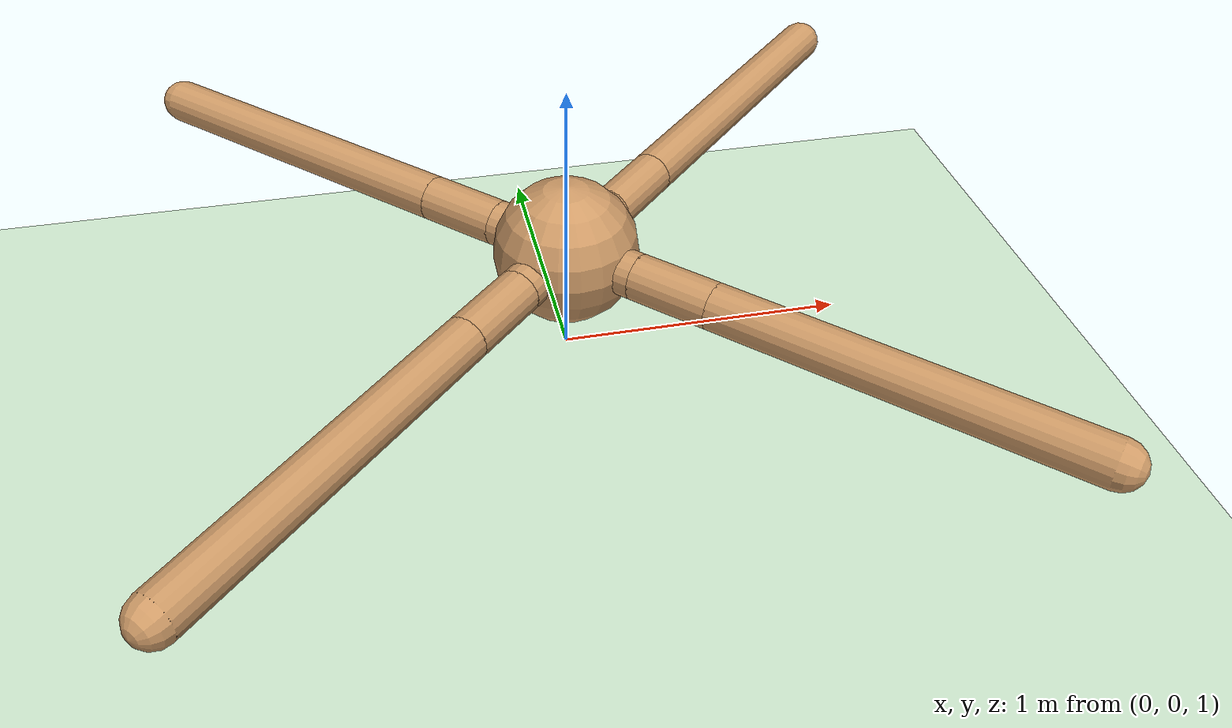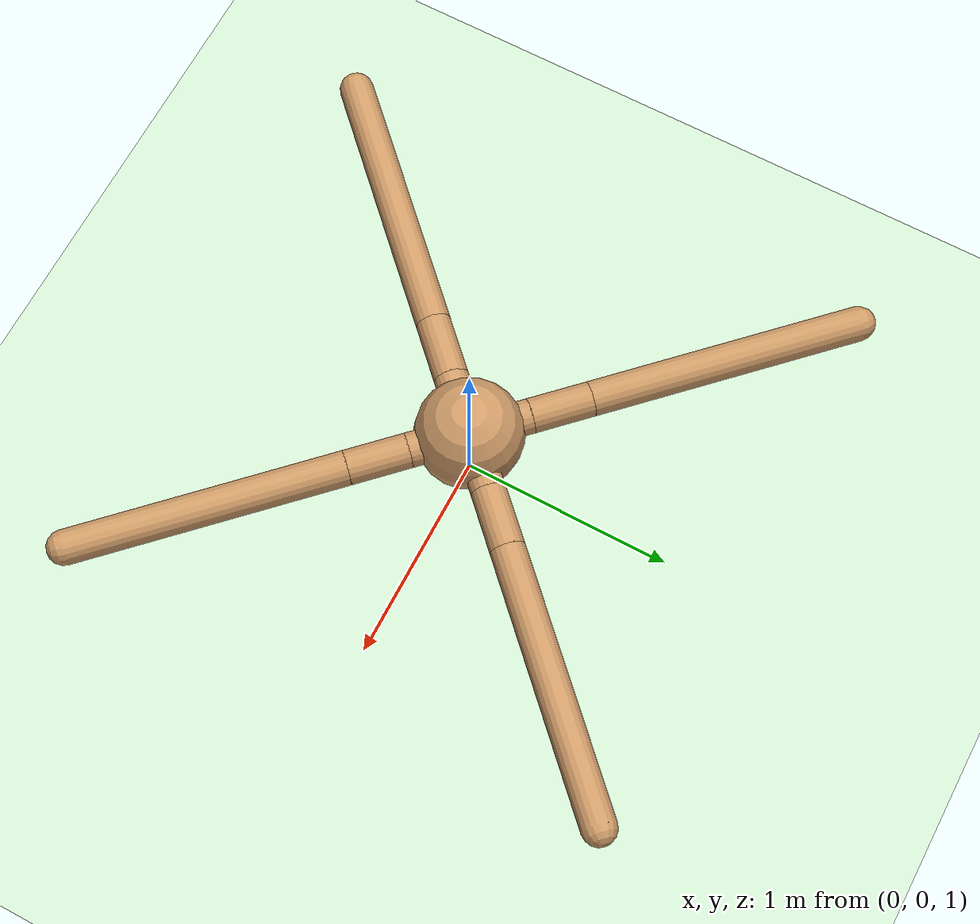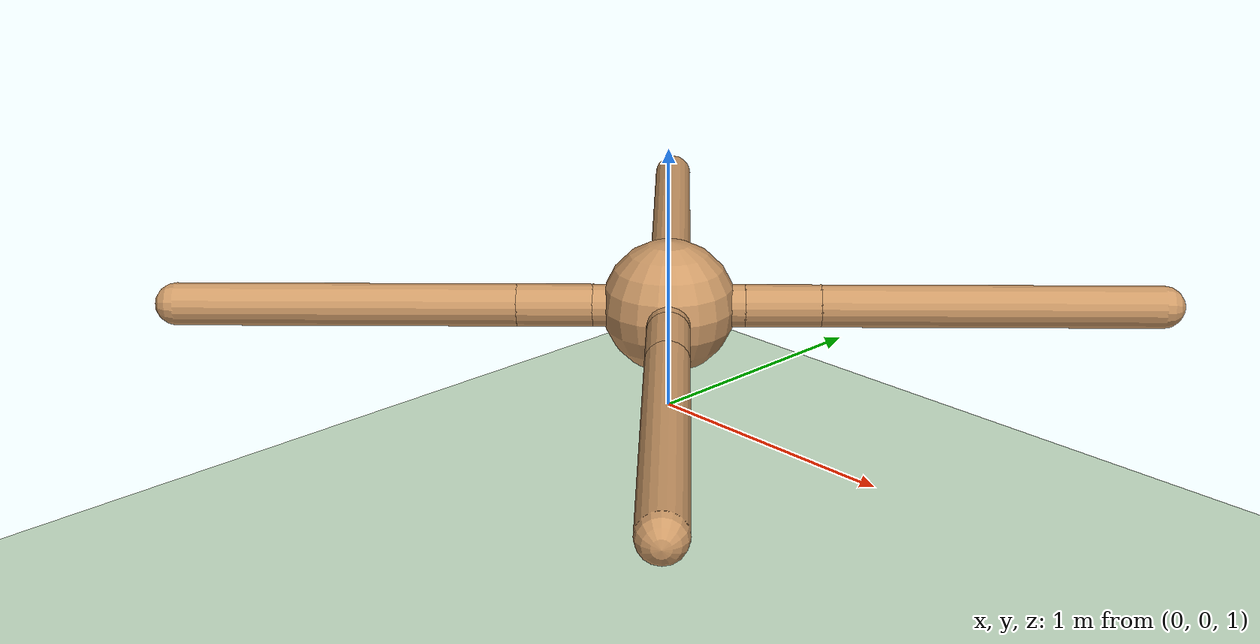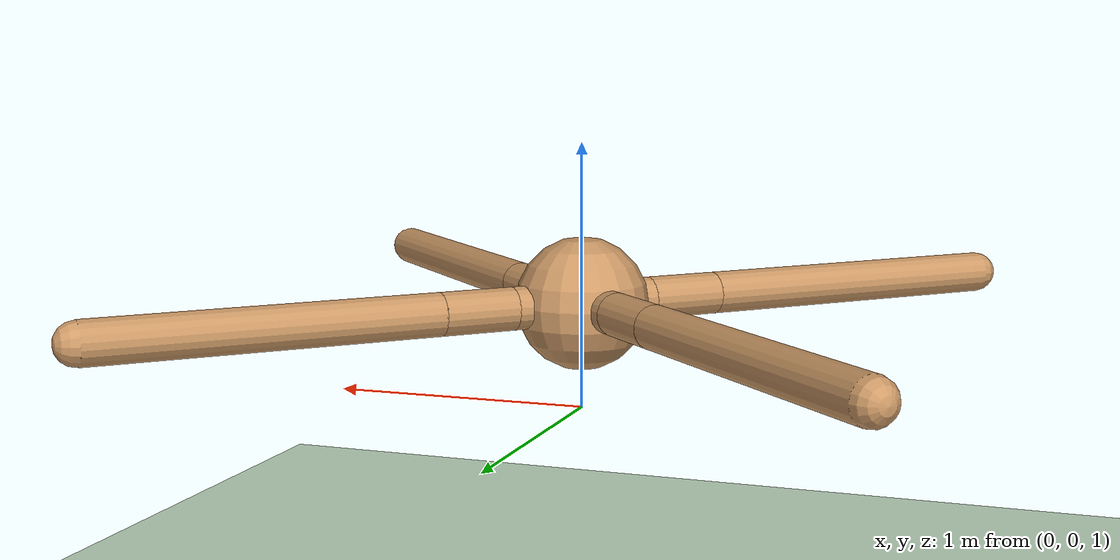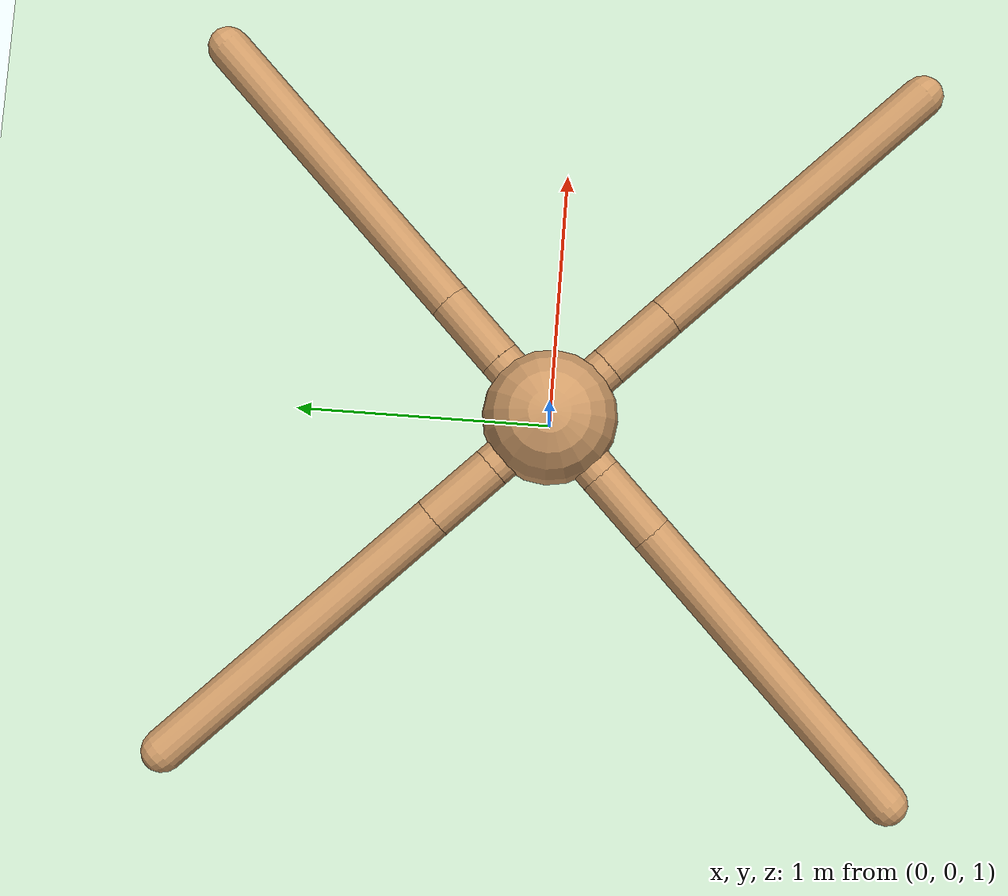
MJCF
<mujoco model="squatant">
  <compiler angle="degree" coordinate="local" inertiafromgeom="true"/>
  <option integrator="RK4" timestep="0.01"/>
  <custom>
    <numeric data="0.0 0.0 0.55 1.0 0.0 0.0 0.0 0.0 1.0 0.0 -1.0 0.0 -1.0 0.0 1.0" name="init_qpos"/>
  </custom>
  <default>
    <joint armature="1" damping="1" limited="true"/>
    <geom conaffinity="0" condim="3" density="5.0" friction="1 0.5 0.5" margin="0.01" rgba="0.8 0.6 0.4 1"/>
  </default>
  <asset>
    <texture builtin="gradient" height="100" rgb1="1 1 1" rgb2="0 0 0" type="skybox" width="100"/>
    <texture builtin="flat" height="1278" mark="cross" markrgb="1 1 1" name="texgeom" random="0.01" rgb1="0.8 0.6 0.4" rgb2="0.8 0.6 0.4" type="cube" width="127"/>
    <texture builtin="checker" height="100" name="texplane" rgb1="0 0 0" rgb2="0.8 0.8 0.8" type="2d" width="100"/>
    <material name="MatPlane" reflectance="0.5" shininess="1" specular="1" texrepeat="60 60" />#texture="texplane"
    <material name="geom" texture="texgeom" texuniform="true"/>
  </asset>
  <worldbody>
    <light cutoff="100" diffuse="1 1 1" dir="-0 0 -1.3" directional="true" exponent="1" pos="0 0 1.3" specular=".1 .1 .1"/>
    <geom conaffinity="1" condim="3" material="MatPlane" name="floor" pos="0 0 0" rgba="0.8 0.9 0.8 1" size="40 40 40" type="plane"/>
    <body name="torso" pos="0 0 1.4">
      <camera name="track" mode="trackcom" pos="0 -3 0.3" xyaxes="1 0 0 0 0 1"/>
      <geom name="torso_geom" pos="0 0 0" size="0.25" type="sphere" mass='3'/>

      <joint armature="0" damping="0" limited="false" margin="0.01" name="root" pos="0 0 0" type="free"/>
      <body name="front_left_leg" pos="0 0 0">
        <geom fromto="0.0 0.0 0.0 0.2 0.2 0.0" name="aux_1_geom" size="0.08" type="capsule"/>
        <body name="aux_1" pos="0.2 0.2 0">
          <joint axis="-1 1 0" name="hip_1" pos="0.0 0.0 0.0" range="0 30" type="hinge"/>#-20 20
          <geom fromto="0.0 0.0 0.0 0.2 0.2 0.0" name="left_leg_geom" size="0.08" type="capsule"/>
          <body pos="0.2 0.2 0">
            <joint axis="-1 1 0" name="ankle_1" pos="0.0 0.0 0.0" range="10 50" type="hinge"/>
            <geom fromto="0.0 0.0 0.0 0.9 0.9 0.0" name="left_ankle_geom" size="0.08" type="capsule"/>
          </body>
        </body>
      </body>
      <body name="front_right_leg" pos="0 0 0">
        <geom fromto="0.0 0.0 0.0 -0.2 0.2 0.0" name="aux_2_geom" size="0.08" type="capsule"/>
        <body name="aux_2" pos="-0.2 0.2 0">
          <joint axis="1 1 0" name="hip_2" pos="0.0 0.0 0.0" range="-30 0" type="hinge"/>
          <geom fromto="0.0 0.0 0.0 -0.2 0.2 0.0" name="right_leg_geom" size="0.08" type="capsule"/>
          <body pos="-0.2 0.2 0">
            <joint axis="1 1 0" name="ankle_2" pos="0.0 0.0 0.0" range="-50 -10" type="hinge"/>
            <geom fromto="0.0 0.0 0.0 -0.9 0.9 0.0" name="right_ankle_geom" size="0.08" type="capsule"/>
          </body>
        </body>
      </body>
      <body name="back_leg" pos="0 0 0">
        <geom fromto="0.0 0.0 0.0 -0.2 -0.2 0.0" name="aux_3_geom" size="0.08" type="capsule"/>
        <body name="aux_3" pos="-0.2 -0.2 0">
          <joint axis="-1 1 0" name="hip_3" pos="0.0 0.0 0.0" range="-30 0" type="hinge"/>
          <geom fromto="0.0 0.0 0.0 -0.2 -0.2 0.0" name="back_leg_geom" size="0.08" type="capsule"/>
          <body pos="-0.2 -0.2 0">
            <joint axis="-1 1 0" name="ankle_3" pos="0.0 0.0 0.0" range="-50 -10" type="hinge"/>
            <geom fromto="0.0 0.0 0.0 -0.9 -0.9 0.0" name="third_ankle_geom" size="0.08" type="capsule"/>
          </body>
        </body>
      </body>
      <body name="right_back_leg" pos="0 0 0">
        <geom fromto="0.0 0.0 0.0 0.2 -0.2 0.0" name="aux_4_geom" size="0.08" type="capsule"/>
        <body name="aux_4" pos="0.2 -0.2 0">
          <joint axis="1 1 0" name="hip_4" pos="0.0 0.0 0.0" range="0 30" type="hinge"/>
          <geom fromto="0.0 0.0 0.0 0.2 -0.2 0.0" name="rightback_leg_geom" size="0.08" type="capsule"/>
          <body pos="0.2 -0.2 0">
            <joint axis="1 1 0" name="ankle_4" pos="0.0 0.0 0.0" range="10 50" type="hinge"/>
            <geom fromto="0.0 0.0 0.0 0.9 -0.9 0.0" name="fourth_ankle_geom" size="0.08" type="capsule"/>
          </body>
        </body>
      </body>
    </body>

    <body name="target" pos="0 0 1.5">

	<site  name="target" pos="0 0 0" rgba="0.9 0.2 0.2 1" size=".05 .05 .05" type="sphere" />
    </body>

  </worldbody>
  <actuator>

    <motor ctrllimited="true" ctrlrange="-1.0 1.0" joint="hip_1" gear="80"/>
    <motor ctrllimited="true" ctrlrange="-1.0 1.0" joint="ankle_1" gear="100"/>#150
    <motor ctrllimited="true" ctrlrange="-1.0 1.0" joint="hip_2" gear="80"/>
    <motor ctrllimited="true" ctrlrange="-1.0 1.0" joint="ankle_2" gear="100"/>
    <motor ctrllimited="true" ctrlrange="-1.0 1.0" joint="hip_3" gear="80"/>
    <motor ctrllimited="true" ctrlrange="-1.0 1.0" joint="ankle_3" gear="100"/>
    <motor ctrllimited="true" ctrlrange="-1.0 1.0" joint="hip_4" gear="80"/>
    <motor ctrllimited="true" ctrlrange="-1.0 1.0" joint="ankle_4" gear="100"/>
  </actuator>

</mujoco>
